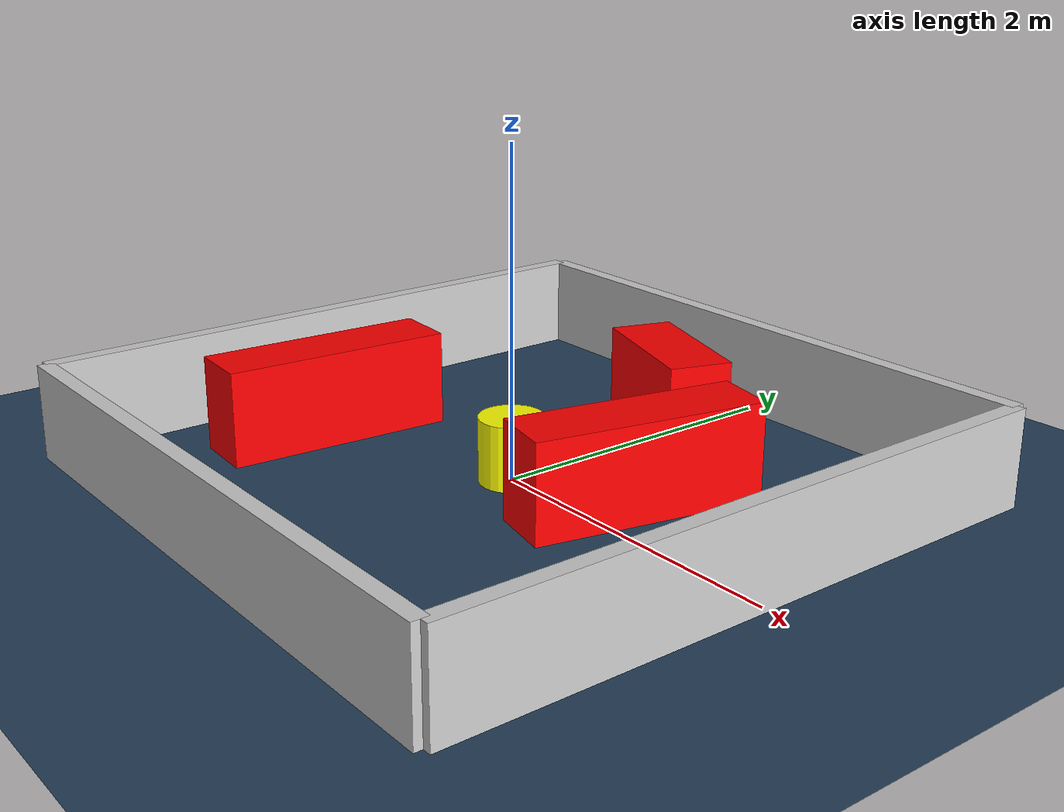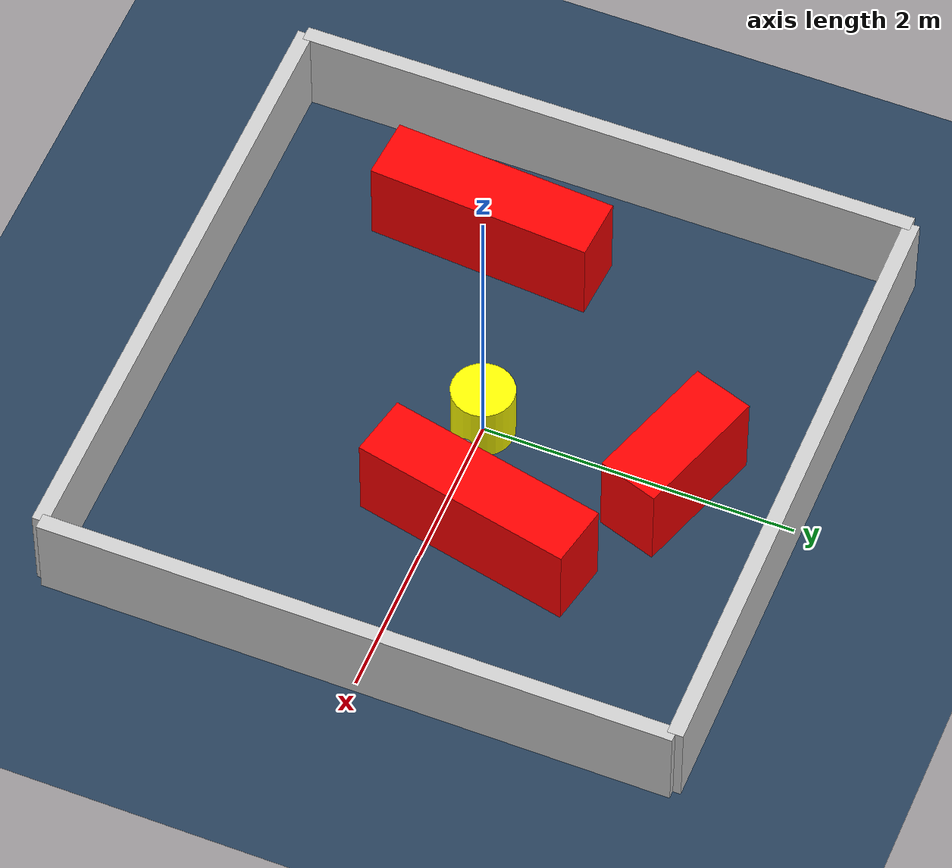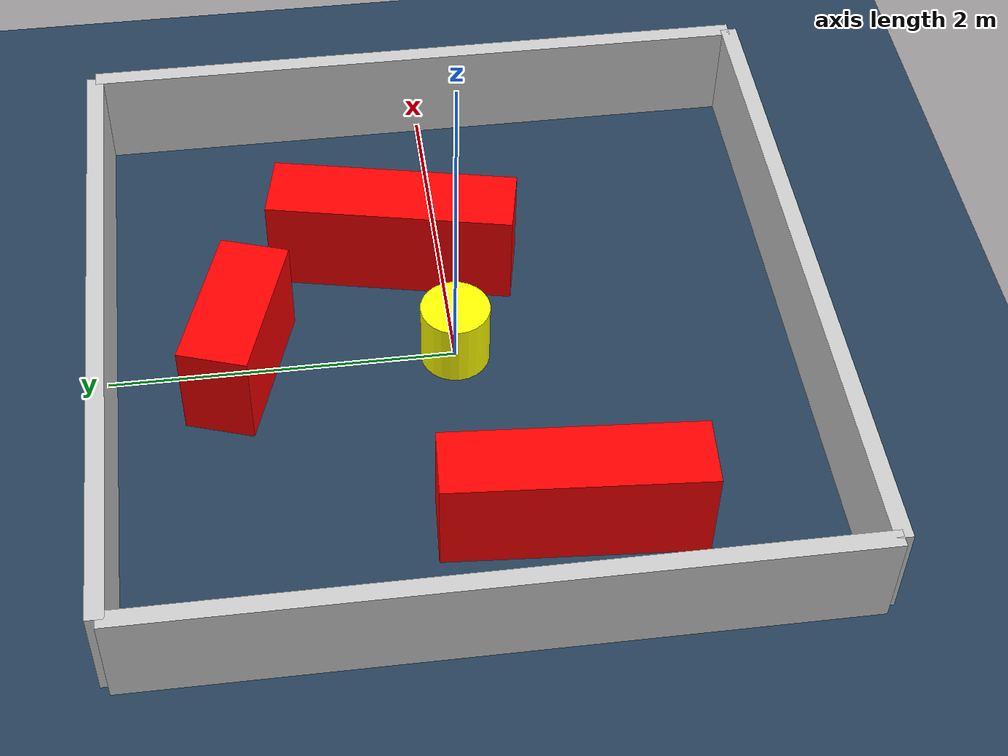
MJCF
<?xml version="1.0" ?>
<mujoco model="generated_environment">
  <option timestep="0.01" integrator="RK4" cone="elliptic"/>
  <default>
    <geom density="1"/>
  </default>
  <asset>
    <texture builtin="gradient" height="3072" rgb1="0.3 0.5 0.7" rgb2="0 0 0" type="skybox" width="512"/>
    <texture builtin="checker" height="300" mark="edge" markrgb="0.8 0.8 0.8" name="groundplane" rgb1="0.2 0.3 0.4" rgb2="0.1 0.2 0.3" type="2d" width="300"/>
    <material name="groundplane" reflectance="0.2" texrepeat="5 5" texture="groundplane" texuniform="true"/>
    <material name="robot" rgba="0.0 1.0 0.0 1"/>
  </asset>
  <worldbody>
    <light dir="0 0 -1" directional="true" pos="0 0 1.5"/>
    <geom condim="4" friction="1.0 0.005 0.001" material="groundplane" name="floor" size="0 0 0.05" type="plane"/>
    <body name="walls">
      <geom name="wall_1" condim="4" pos="-2.0 0.0 0.3" rgba="0.800000011920929 0.800000011920929 0.800000011920929 1.0" size="0.05 2.0 0.3" type="box"/>
      <geom name="wall_2" condim="4" pos="2.0 0.0 0.3" rgba="0.800000011920929 0.800000011920929 0.800000011920929 1.0" size="0.05 2.0 0.3" type="box"/>
      <geom name="wall_3" condim="4" pos="0.0 -2.0 0.3" rgba="0.800000011920929 0.800000011920929 0.800000011920929 1.0" size="2.0 0.05 0.3" type="box"/>
      <geom name="wall_4" condim="4" pos="0.0 2.0 0.3" rgba="0.800000011920929 0.800000011920929 0.800000011920929 1.0" size="2.0 0.05 0.3" type="box"/>
    </body>
    <body name="robot">
      <joint name="joint_x" type="slide" pos="0 0 0" axis="1 0 0"/>
      <joint name="joint_y" type="slide" pos="0 0 0" axis="0 1 0"/>
      <geom name="robot" type="sphere" pos="0.3 0.0 0.2" size="0.05" mass="5." friction="1.0 0.005 0.0001" condim="4" rgba="0.5 0.5 0.5 1.0"/>
      <site name="sensor_ball"/>
    </body>
    <body name="obstacle_movable_1">
      <geom name="obstacle_movable_1" condim="4" pos="0.0 0.0 0.2" euler="0 0 0.0" friction="1.0 0.005 0.001" rgba="1.0 1.0 0.0 1.0" size="0.2 0.2 0.0" type="cylinder" mass="0.1"/>
      <joint type="free"/>
    </body>
    <body name="obstacle_2_static">
      <geom name="obstacle_2_static" condim="4" pos="-1.2979401261793646 -0.47061988249063846 0.3" euler="0 0 86.19082191796647" friction="1.0 0.005 0.001" rgba="1 0 0 1" size="0.7242367910298215 0.2 0.3" type="box"/>
    </body>
    <body name="obstacle_3_static">
      <geom name="obstacle_3_static" condim="4" pos="0.013122398809940261 1.238415642470781 0.3" euler="0 0 341.58187817209733" friction="1.0 0.005 0.001" rgba="1 0 0 1" size="0.44617136276847796 0.2 0.3" type="box"/>
    </body>
    <body name="obstacle_4_static">
      <geom name="obstacle_4_static" condim="4" pos="0.7620401741847624 0.2793912276946322 0.3" euler="0 0 77.90625166296337" friction="1.0 0.005 0.001" rgba="1 0 0 1" size="0.7192090206978027 0.2 0.3" type="box"/>
    </body>
  </worldbody>
  <actuator>
    <motor name="actuator_x" joint="joint_x" gear="1" ctrlrange="-1 1"/>
    <motor name="actuator_y" joint="joint_y" gear="1" ctrlrange="-1 1"/>
  </actuator>
</mujoco>
